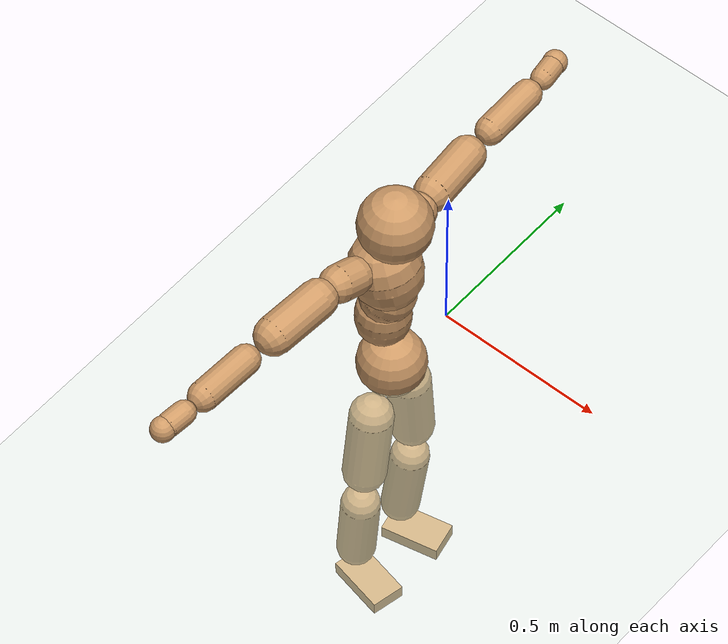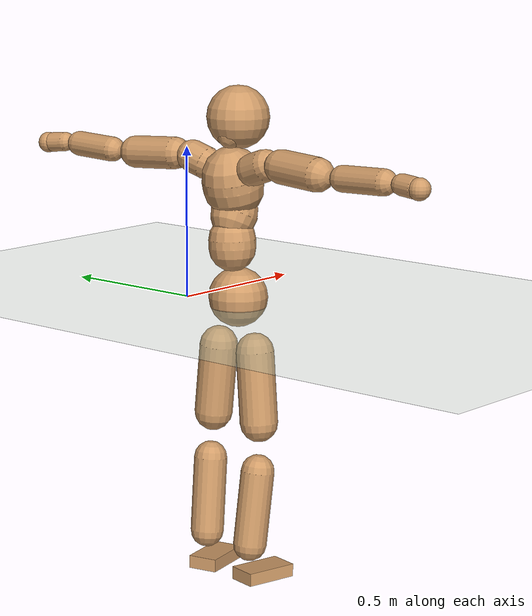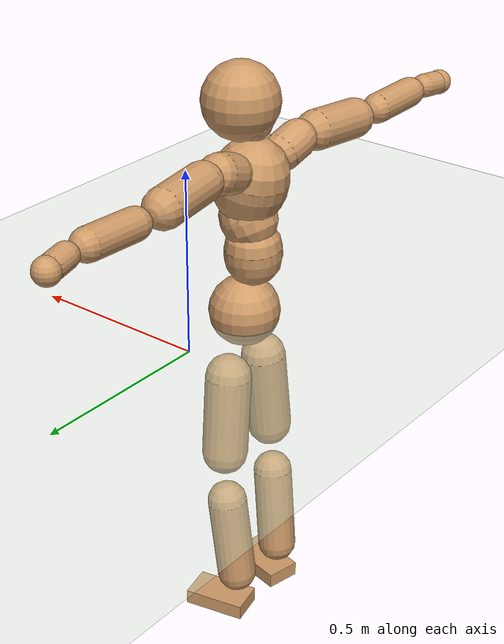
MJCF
<mujoco model="humanoid">
  <compiler coordinate="local"/>
  <default>
    <joint damping="0.0" armature="0.01" stiffness="0.0" limited="true"/>
    <geom conaffinity="1" condim="3" contype="7" margin="0.001" rgba="0.8 0.6 .4 1"/>
  </default>
  <asset>
    <texture type="skybox" builtin="gradient" rgb1=".4 .5 .6" rgb2="0 0 0" width="100" height="100"/>
    <texture builtin="flat" height="1278" mark="cross" markrgb="1 1 1" name="texgeom" random="0.01" rgb1="0.8 0.6 0.4" rgb2="0.8 0.6 0.4" type="cube" width="127"/>
    <texture builtin="checker" height="100" name="texplane" rgb1="0 0 0" rgb2="0.8 0.8 0.8" type="2d" width="100"/>
    <material name="MatPlane" reflectance="0.5" shininess="1" specular="1" texrepeat="60 60" texture="texplane"/>
    <material name="geom" texture="texgeom" texuniform="true"/>
  </asset>
  <worldbody>
    <light cutoff="100" diffuse="1 1 1" dir="-0 0 -1.3" directional="true" exponent="1" pos="0 0 1.3" specular=".1 .1 .1"/>
    <geom conaffinity="1" condim="3" name="floor" pos="0 0 0" rgba="0.8 0.9 0.8 1" size="100 100 .2" type="plane" material="MatPlane"/>
    <body name="Pelvis" pos="-0.0016 -0.2254 0.0308">
      <freejoint name="Pelvis"/>
      <geom type="sphere" contype="1" conaffinity="1" density="500" size="0.0971" pos="0.0000 0.0000 0.0000" name="Pelvis"/>
      <body name="L_Hip" pos="-0.0059 0.0711 -0.0934">
        <joint name="L_Hip_x" type="hinge" pos="0 0 0" axis="1 0 0" stiffness="800" damping="80" armature="0.02" range="-180.0000 180.0000"/>
        <joint name="L_Hip_y" type="hinge" pos="0 0 0" axis="0 1 0" stiffness="800" damping="80" armature="0.02" range="-180.0000 180.0000"/>
        <joint name="L_Hip_z" type="hinge" pos="0 0 0" axis="0 0 1" stiffness="800" damping="80" armature="0.02" range="-180.0000 180.0000"/>
        <geom type="capsule" contype="1" conaffinity="1" density="500" fromto="-0.0011 0.0069 -0.0763 -0.0042 0.0277 -0.3054" size="0.063" name="L_Hip"/>
        <body name="L_Knee" pos="-0.0053 0.0346 -0.3817">
          <joint name="L_Knee_x" type="hinge" pos="0 0 0" axis="1 0 0" stiffness="800" damping="80" armature="0.02" range="-180.0000 180.0000"/>
          <joint name="L_Knee_y" type="hinge" pos="0 0 0" axis="0 1 0" stiffness="800" damping="80" armature="0.02" range="-180.0000 180.0000"/>
          <joint name="L_Knee_z" type="hinge" pos="0 0 0" axis="0 0 1" stiffness="800" damping="80" armature="0.02" range="-180.0000 180.0000"/>
          <geom type="capsule" contype="1" conaffinity="1" density="500" fromto="-0.0090 -0.0028 -0.0816 -0.0361 -0.0112 -0.3263" size="0.0553" name="L_Knee"/>
          <body name="L_Ankle" pos="-0.0451 -0.014 -0.4078">
            <joint name="L_Ankle_x" type="hinge" pos="0 0 0" axis="1 0 0" stiffness="800" damping="80" armature="0.02" range="-180.0000 180.0000"/>
            <joint name="L_Ankle_y" type="hinge" pos="0 0 0" axis="0 1 0" stiffness="800" damping="80" armature="0.02" range="-180.0000 180.0000"/>
            <joint name="L_Ankle_z" type="hinge" pos="0 0 0" axis="0 0 1" stiffness="800" damping="80" armature="0.02" range="-180.0000 180.0000"/>
            <geom type="box" contype="1" conaffinity="1" density="500" pos="0.0608 0.0133 -0.0285" size="0.0869 0.0491 0.0213" quat="0.9942 0.0000 0.0000 0.1076" name="L_Ankle"/>
            <body name="L_Toe" pos="0.1217 0.0267 -0.057">
              <joint name="L_Toe_x" type="hinge" pos="0 0 0" axis="1 0 0" stiffness="500" damping="50" armature="0.02" range="-180.0000 180.0000"/>
              <joint name="L_Toe_y" type="hinge" pos="0 0 0" axis="0 1 0" stiffness="500" damping="50" armature="0.02" range="-180.0000 180.0000"/>
              <joint name="L_Toe_z" type="hinge" pos="0 0 0" axis="0 0 1" stiffness="500" damping="50" armature="0.02" range="-180.0000 180.0000"/>
              <geom type="box" contype="1" conaffinity="1" density="500" pos="0.0000 0.0000 0.0276" size="0.001 0.0024 0.001" quat="0.9935 0.0000 0.0000 0.1136" name="L_Toe"/>
            </body>
          </body>
        </body>
      </body>
      <body name="R_Hip" pos="-0.0032 -0.0693 -0.0924">
        <joint name="R_Hip_x" type="hinge" pos="0 0 0" axis="1 0 0" stiffness="800" damping="80" armature="0.02" range="-180.0000 180.0000"/>
        <joint name="R_Hip_y" type="hinge" pos="0 0 0" axis="0 1 0" stiffness="800" damping="80" armature="0.02" range="-180.0000 180.0000"/>
        <joint name="R_Hip_z" type="hinge" pos="0 0 0" axis="0 0 1" stiffness="800" damping="80" armature="0.02" range="-180.0000 180.0000"/>
        <geom type="capsule" contype="1" conaffinity="1" density="500" fromto="-0.0020 -0.0077 -0.0779 -0.0079 -0.0310 -0.3117" size="0.0621" name="R_Hip"/>
        <body name="R_Knee" pos="-0.0098 -0.0387 -0.3897">
          <joint name="R_Knee_x" type="hinge" pos="0 0 0" axis="1 0 0" stiffness="800" damping="80" armature="0.02" range="-180.0000 180.0000"/>
          <joint name="R_Knee_y" type="hinge" pos="0 0 0" axis="0 1 0" stiffness="800" damping="80" armature="0.02" range="-180.0000 180.0000"/>
          <joint name="R_Knee_z" type="hinge" pos="0 0 0" axis="0 0 1" stiffness="800" damping="80" armature="0.02" range="-180.0000 180.0000"/>
          <geom type="capsule" contype="1" conaffinity="1" density="500" fromto="-0.0088 0.0032 -0.0817 -0.0351 0.0129 -0.3267" size="0.0553" name="R_Knee"/>
          <body name="R_Ankle" pos="-0.0439 0.0161 -0.4084">
            <joint name="R_Ankle_x" type="hinge" pos="0 0 0" axis="1 0 0" stiffness="800" damping="80" armature="0.02" range="-180.0000 180.0000"/>
            <joint name="R_Ankle_y" type="hinge" pos="0 0 0" axis="0 1 0" stiffness="800" damping="80" armature="0.02" range="-180.0000 180.0000"/>
            <joint name="R_Ankle_z" type="hinge" pos="0 0 0" axis="0 0 1" stiffness="800" damping="80" armature="0.02" range="-180.0000 180.0000"/>
            <geom type="box" contype="1" conaffinity="1" density="500" pos="0.0629 -0.0133 -0.0245" size="0.0883 0.049 0.0213" quat="0.9945 0.0000 0.0000 -0.1043" name="R_Ankle"/>
            <body name="R_Toe" pos="0.1259 -0.0267 -0.0489">
              <joint name="R_Toe_x" type="hinge" pos="0 0 0" axis="1 0 0" stiffness="500" damping="50" armature="0.02" range="-180.0000 180.0000"/>
              <joint name="R_Toe_y" type="hinge" pos="0 0 0" axis="0 1 0" stiffness="500" damping="50" armature="0.02" range="-180.0000 180.0000"/>
              <joint name="R_Toe_z" type="hinge" pos="0 0 0" axis="0 0 1" stiffness="500" damping="50" armature="0.02" range="-180.0000 180.0000"/>
              <geom type="box" contype="1" conaffinity="1" density="500" pos="0.0000 0.0000 0.0252" size="0.001 0.0024 0.0011" quat="0.9955 0.0000 0.0000 -0.0952" name="R_Toe"/>
            </body>
          </body>
        </body>
      </body>
      <body name="Torso" pos="-0.029 -0.0025 0.1115">
        <joint name="Torso_x" type="hinge" pos="0 0 0" axis="1 0 0" stiffness="1000" damping="100" armature="0.02" range="-180.0000 180.0000"/>
        <joint name="Torso_y" type="hinge" pos="0 0 0" axis="0 1 0" stiffness="1000" damping="100" armature="0.02" range="-180.0000 180.0000"/>
        <joint name="Torso_z" type="hinge" pos="0 0 0" axis="0 0 1" stiffness="1000" damping="100" armature="0.02" range="-180.0000 180.0000"/>
        <geom type="capsule" contype="1" conaffinity="1" density="500" fromto="-0.0001 0.0033 0.0817 -0.0001 0.0022 0.0545" size="0.077" name="Torso"/>
        <body name="Spine" pos="-0.0001 0.0055 0.1362">
          <joint name="Spine_x" type="hinge" pos="0 0 0" axis="1 0 0" stiffness="1000" damping="100" armature="0.02" range="-180.0000 180.0000"/>
          <joint name="Spine_y" type="hinge" pos="0 0 0" axis="0 1 0" stiffness="1000" damping="100" armature="0.02" range="-180.0000 180.0000"/>
          <joint name="Spine_z" type="hinge" pos="0 0 0" axis="0 0 1" stiffness="1000" damping="100" armature="0.02" range="-180.0000 180.0000"/>
          <geom type="capsule" contype="1" conaffinity="1" density="500" fromto="0.0159 0.0008 0.0321 0.0106 0.0006 0.0214" size="0.0764" name="Spine"/>
          <body name="Chest" pos="0.0265 0.0014 0.0535">
            <joint name="Chest_x" type="hinge" pos="0 0 0" axis="1 0 0" stiffness="1000" damping="100" armature="0.02" range="-180.0000 180.0000"/>
            <joint name="Chest_y" type="hinge" pos="0 0 0" axis="0 1 0" stiffness="1000" damping="100" armature="0.02" range="-180.0000 180.0000"/>
            <joint name="Chest_z" type="hinge" pos="0 0 0" axis="0 0 1" stiffness="1000" damping="100" armature="0.02" range="-180.0000 180.0000"/>
            <geom type="capsule" contype="1" conaffinity="1" density="500" fromto="-0.0238 -0.0010 0.0923 -0.0158 -0.0007 0.0616" size="0.0996" name="Chest"/>
            <body name="Neck" pos="-0.0436 -0.0024 0.217">
              <joint name="Neck_x" type="hinge" pos="0 0 0" axis="1 0 0" stiffness="500" damping="50" armature="0.02" range="-180.0000 180.0000"/>
              <joint name="Neck_y" type="hinge" pos="0 0 0" axis="0 1 0" stiffness="500" damping="50" armature="0.02" range="-180.0000 180.0000"/>
              <joint name="Neck_z" type="hinge" pos="0 0 0" axis="0 0 1" stiffness="500" damping="50" armature="0.02" range="-180.0000 180.0000"/>
              <geom type="capsule" contype="1" conaffinity="1" density="500" fromto="0.0104 0.0010 0.0130 0.0417 0.0041 0.0518" size="0.0442" name="Neck"/>
              <body name="Head" pos="0.0521 0.0051 0.0648">
                <joint name="Head_x" type="hinge" pos="0 0 0" axis="1 0 0" stiffness="500" damping="50" armature="0.02" range="-180.0000 180.0000"/>
                <joint name="Head_y" type="hinge" pos="0 0 0" axis="0 1 0" stiffness="500" damping="50" armature="0.02" range="-180.0000 180.0000"/>
                <joint name="Head_z" type="hinge" pos="0 0 0" axis="0 0 1" stiffness="500" damping="50" armature="0.02" range="-180.0000 180.0000"/>
                <geom type="sphere" contype="1" conaffinity="1" density="500" size="0.1022" pos="0.0000 0.0000 0.0000" name="Head"/>
              </body>
            </body>
            <body name="L_Thorax" pos="-0.0353 0.0795 0.1238">
              <joint name="L_Thorax_x" type="hinge" pos="0 0 0" axis="1 0 0" stiffness="500" damping="50" armature="0.02" range="-180.0000 180.0000"/>
              <joint name="L_Thorax_y" type="hinge" pos="0 0 0" axis="0 1 0" stiffness="500" damping="50" armature="0.02" range="-180.0000 180.0000"/>
              <joint name="L_Thorax_z" type="hinge" pos="0 0 0" axis="0 0 1" stiffness="500" damping="50" armature="0.02" range="-180.0000 180.0000"/>
              <geom type="capsule" contype="1" conaffinity="1" density="500" fromto="-0.0018 0.0182 0.0062 -0.0072 0.0729 0.0247" size="0.053" name="L_Thorax"/>
              <body name="L_Shoulder" pos="-0.0089 0.0911 0.0309">
                <joint name="L_Shoulder_x" type="hinge" pos="0 0 0" axis="1 0 0" stiffness="500" damping="50" armature="0.02" range="-720.0000 720.0000"/>
                <joint name="L_Shoulder_y" type="hinge" pos="0 0 0" axis="0 1 0" stiffness="500" damping="50" armature="0.02" range="-720.0000 720.0000"/>
                <joint name="L_Shoulder_z" type="hinge" pos="0 0 0" axis="0 0 1" stiffness="500" damping="50" armature="0.02" range="-720.0000 720.0000"/>
                <geom type="capsule" contype="1" conaffinity="1" density="500" fromto="-0.0057 0.0529 -0.0027 -0.0230 0.2115 -0.0107" size="0.0529" name="L_Shoulder"/>
                <body name="L_Elbow" pos="-0.0287 0.2644 -0.0133">
                  <joint name="L_Elbow_x" type="hinge" pos="0 0 0" axis="1 0 0" stiffness="500" damping="50" armature="0.02" range="-720.0000 720.0000"/>
                  <joint name="L_Elbow_y" type="hinge" pos="0 0 0" axis="0 1 0" stiffness="500" damping="50" armature="0.02" range="-720.0000 720.0000"/>
                  <joint name="L_Elbow_z" type="hinge" pos="0 0 0" axis="0 0 1" stiffness="500" damping="50" armature="0.02" range="-720.0000 720.0000"/>
                  <geom type="capsule" contype="1" conaffinity="1" density="500" fromto="-0.0002 0.0510 0.0019 -0.0007 0.2041 0.0076" size="0.0413" name="L_Elbow"/>
                  <body name="L_Wrist" pos="-0.0009 0.2551 0.0096">
                    <joint name="L_Wrist_x" type="hinge" pos="0 0 0" axis="1 0 0" stiffness="300" damping="30" armature="0.02" range="-180.0000 180.0000"/>
                    <joint name="L_Wrist_y" type="hinge" pos="0 0 0" axis="0 1 0" stiffness="300" damping="30" armature="0.02" range="-180.0000 180.0000"/>
                    <joint name="L_Wrist_z" type="hinge" pos="0 0 0" axis="0 0 1" stiffness="300" damping="30" armature="0.02" range="-180.0000 180.0000"/>
                    <geom type="capsule" contype="1" conaffinity="1" density="500" fromto="-0.0031 0.0172 -0.0017 -0.0123 0.0688 -0.0066" size="0.0325" name="L_Wrist"/>
                    <body name="L_Hand" pos="-0.0154 0.086 -0.0083">
                      <joint name="L_Hand_x" type="hinge" pos="0 0 0" axis="1 0 0" stiffness="300" damping="30" armature="0.02" range="-180.0000 180.0000"/>
                      <joint name="L_Hand_y" type="hinge" pos="0 0 0" axis="0 1 0" stiffness="300" damping="30" armature="0.02" range="-180.0000 180.0000"/>
                      <joint name="L_Hand_z" type="hinge" pos="0 0 0" axis="0 0 1" stiffness="300" damping="30" armature="0.02" range="-180.0000 180.0000"/>
                      <geom type="sphere" contype="1" conaffinity="1" density="500" size="0.0344" pos="0.0000 0.0000 0.0000" name="L_Hand"/>
                    </body>
                  </body>
                </body>
              </body>
            </body>
            <body name="R_Thorax" pos="-0.0399 -0.0822 0.1209">
              <joint name="R_Thorax_x" type="hinge" pos="0 0 0" axis="1 0 0" stiffness="500" damping="50" armature="0.02" range="-180.0000 180.0000"/>
              <joint name="R_Thorax_y" type="hinge" pos="0 0 0" axis="0 1 0" stiffness="500" damping="50" armature="0.02" range="-180.0000 180.0000"/>
              <joint name="R_Thorax_z" type="hinge" pos="0 0 0" axis="0 0 1" stiffness="500" damping="50" armature="0.02" range="-180.0000 180.0000"/>
              <geom type="capsule" contype="1" conaffinity="1" density="500" fromto="-0.0018 -0.0193 0.0065 -0.0072 -0.0773 0.0262" size="0.0521" name="R_Thorax"/>
              <body name="R_Shoulder" pos="-0.009 -0.0966 0.0327">
                <joint name="R_Shoulder_x" type="hinge" pos="0 0 0" axis="1 0 0" stiffness="500" damping="50" armature="0.02" range="-720.0000 720.0000"/>
                <joint name="R_Shoulder_y" type="hinge" pos="0 0 0" axis="0 1 0" stiffness="500" damping="50" armature="0.02" range="-720.0000 720.0000"/>
                <joint name="R_Shoulder_z" type="hinge" pos="0 0 0" axis="0 0 1" stiffness="500" damping="50" armature="0.02" range="-720.0000 720.0000"/>
                <geom type="capsule" contype="1" conaffinity="1" density="500" fromto="-0.0045 -0.0518 -0.0027 -0.0181 -0.2074 -0.0109" size="0.0544" name="R_Shoulder"/>
                <body name="R_Elbow" pos="-0.0226 -0.2592 -0.0136">
                  <joint name="R_Elbow_x" type="hinge" pos="0 0 0" axis="1 0 0" stiffness="500" damping="50" armature="0.02" range="-720.0000 720.0000"/>
                  <joint name="R_Elbow_y" type="hinge" pos="0 0 0" axis="0 1 0" stiffness="500" damping="50" armature="0.02" range="-720.0000 720.0000"/>
                  <joint name="R_Elbow_z" type="hinge" pos="0 0 0" axis="0 0 1" stiffness="500" damping="50" armature="0.02" range="-720.0000 720.0000"/>
                  <geom type="capsule" contype="1" conaffinity="1" density="500" fromto="-0.0011 -0.0523 0.0017 -0.0045 -0.2091 0.0067" size="0.0417" name="R_Elbow"/>
                  <body name="R_Wrist" pos="-0.0057 -0.2614 0.0083">
                    <joint name="R_Wrist_x" type="hinge" pos="0 0 0" axis="1 0 0" stiffness="300" damping="30" armature="0.02" range="-180.0000 180.0000"/>
                    <joint name="R_Wrist_y" type="hinge" pos="0 0 0" axis="0 1 0" stiffness="300" damping="30" armature="0.02" range="-180.0000 180.0000"/>
                    <joint name="R_Wrist_z" type="hinge" pos="0 0 0" axis="0 0 1" stiffness="300" damping="30" armature="0.02" range="-180.0000 180.0000"/>
                    <geom type="capsule" contype="1" conaffinity="1" density="500" fromto="-0.0021 -0.0174 -0.0012 -0.0085 -0.0694 -0.0050" size="0.0334" name="R_Wrist"/>
                    <body name="R_Hand" pos="-0.0106 -0.0868 -0.0062">
                      <joint name="R_Hand_x" type="hinge" pos="0 0 0" axis="1 0 0" stiffness="300" damping="30" armature="0.02" range="-180.0000 180.0000"/>
                      <joint name="R_Hand_y" type="hinge" pos="0 0 0" axis="0 1 0" stiffness="300" damping="30" armature="0.02" range="-180.0000 180.0000"/>
                      <joint name="R_Hand_z" type="hinge" pos="0 0 0" axis="0 0 1" stiffness="300" damping="30" armature="0.02" range="-180.0000 180.0000"/>
                      <geom type="sphere" contype="1" conaffinity="1" density="500" size="0.0348" pos="0.0000 0.0000 0.0000" name="R_Hand"/>
                    </body>
                  </body>
                </body>
              </body>
            </body>
          </body>
        </body>
      </body>
    </body>
  </worldbody>
  <actuator>
    <motor name="L_Hip_x" joint="L_Hip_x" gear="500"/>
    <motor name="L_Hip_y" joint="L_Hip_y" gear="500"/>
    <motor name="L_Hip_z" joint="L_Hip_z" gear="500"/>
    <motor name="L_Knee_x" joint="L_Knee_x" gear="500"/>
    <motor name="L_Knee_y" joint="L_Knee_y" gear="500"/>
    <motor name="L_Knee_z" joint="L_Knee_z" gear="500"/>
    <motor name="L_Ankle_x" joint="L_Ankle_x" gear="500"/>
    <motor name="L_Ankle_y" joint="L_Ankle_y" gear="500"/>
    <motor name="L_Ankle_z" joint="L_Ankle_z" gear="500"/>
    <motor name="L_Toe_x" joint="L_Toe_x" gear="500"/>
    <motor name="L_Toe_y" joint="L_Toe_y" gear="500"/>
    <motor name="L_Toe_z" joint="L_Toe_z" gear="500"/>
    <motor name="R_Hip_x" joint="R_Hip_x" gear="500"/>
    <motor name="R_Hip_y" joint="R_Hip_y" gear="500"/>
    <motor name="R_Hip_z" joint="R_Hip_z" gear="500"/>
    <motor name="R_Knee_x" joint="R_Knee_x" gear="500"/>
    <motor name="R_Knee_y" joint="R_Knee_y" gear="500"/>
    <motor name="R_Knee_z" joint="R_Knee_z" gear="500"/>
    <motor name="R_Ankle_x" joint="R_Ankle_x" gear="500"/>
    <motor name="R_Ankle_y" joint="R_Ankle_y" gear="500"/>
    <motor name="R_Ankle_z" joint="R_Ankle_z" gear="500"/>
    <motor name="R_Toe_x" joint="R_Toe_x" gear="500"/>
    <motor name="R_Toe_y" joint="R_Toe_y" gear="500"/>
    <motor name="R_Toe_z" joint="R_Toe_z" gear="500"/>
    <motor name="Torso_x" joint="Torso_x" gear="500"/>
    <motor name="Torso_y" joint="Torso_y" gear="500"/>
    <motor name="Torso_z" joint="Torso_z" gear="500"/>
    <motor name="Spine_x" joint="Spine_x" gear="500"/>
    <motor name="Spine_y" joint="Spine_y" gear="500"/>
    <motor name="Spine_z" joint="Spine_z" gear="500"/>
    <motor name="Chest_x" joint="Chest_x" gear="500"/>
    <motor name="Chest_y" joint="Chest_y" gear="500"/>
    <motor name="Chest_z" joint="Chest_z" gear="500"/>
    <motor name="Neck_x" joint="Neck_x" gear="500"/>
    <motor name="Neck_y" joint="Neck_y" gear="500"/>
    <motor name="Neck_z" joint="Neck_z" gear="500"/>
    <motor name="Head_x" joint="Head_x" gear="500"/>
    <motor name="Head_y" joint="Head_y" gear="500"/>
    <motor name="Head_z" joint="Head_z" gear="500"/>
    <motor name="L_Thorax_x" joint="L_Thorax_x" gear="500"/>
    <motor name="L_Thorax_y" joint="L_Thorax_y" gear="500"/>
    <motor name="L_Thorax_z" joint="L_Thorax_z" gear="500"/>
    <motor name="L_Shoulder_x" joint="L_Shoulder_x" gear="500"/>
    <motor name="L_Shoulder_y" joint="L_Shoulder_y" gear="500"/>
    <motor name="L_Shoulder_z" joint="L_Shoulder_z" gear="500"/>
    <motor name="L_Elbow_x" joint="L_Elbow_x" gear="500"/>
    <motor name="L_Elbow_y" joint="L_Elbow_y" gear="500"/>
    <motor name="L_Elbow_z" joint="L_Elbow_z" gear="500"/>
    <motor name="L_Wrist_x" joint="L_Wrist_x" gear="500"/>
    <motor name="L_Wrist_y" joint="L_Wrist_y" gear="500"/>
    <motor name="L_Wrist_z" joint="L_Wrist_z" gear="500"/>
    <motor name="L_Hand_x" joint="L_Hand_x" gear="500"/>
    <motor name="L_Hand_y" joint="L_Hand_y" gear="500"/>
    <motor name="L_Hand_z" joint="L_Hand_z" gear="500"/>
    <motor name="R_Thorax_x" joint="R_Thorax_x" gear="500"/>
    <motor name="R_Thorax_y" joint="R_Thorax_y" gear="500"/>
    <motor name="R_Thorax_z" joint="R_Thorax_z" gear="500"/>
    <motor name="R_Shoulder_x" joint="R_Shoulder_x" gear="500"/>
    <motor name="R_Shoulder_y" joint="R_Shoulder_y" gear="500"/>
    <motor name="R_Shoulder_z" joint="R_Shoulder_z" gear="500"/>
    <motor name="R_Elbow_x" joint="R_Elbow_x" gear="500"/>
    <motor name="R_Elbow_y" joint="R_Elbow_y" gear="500"/>
    <motor name="R_Elbow_z" joint="R_Elbow_z" gear="500"/>
    <motor name="R_Wrist_x" joint="R_Wrist_x" gear="500"/>
    <motor name="R_Wrist_y" joint="R_Wrist_y" gear="500"/>
    <motor name="R_Wrist_z" joint="R_Wrist_z" gear="500"/>
    <motor name="R_Hand_x" joint="R_Hand_x" gear="500"/>
    <motor name="R_Hand_y" joint="R_Hand_y" gear="500"/>
    <motor name="R_Hand_z" joint="R_Hand_z" gear="500"/>
  </actuator>
  <contact>
    <exclude body1="Torso" body2="Chest"/>
    <exclude body1="Head" body2="Chest"/>
    <exclude body1="R_Knee" body2="R_Toe"/>
    <exclude body1="R_Knee" body2="L_Ankle"/>
    <exclude body1="R_Knee" body2="L_Toe"/>
    <exclude body1="L_Knee" body2="L_Toe"/>
    <exclude body1="L_Knee" body2="R_Ankle"/>
    <exclude body1="L_Knee" body2="R_Toe"/>
    <exclude body1="L_Shoulder" body2="Chest"/>
    <exclude body1="R_Shoulder" body2="Chest"/>
  </contact>
  <sensor/>
  <size njmax="700" nconmax="700"/>
</mujoco>
